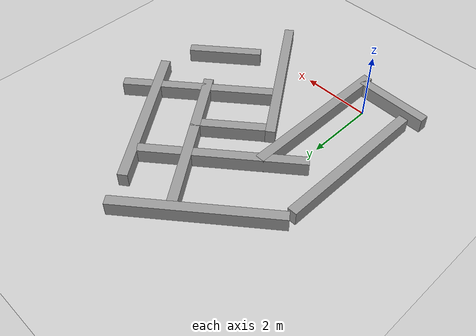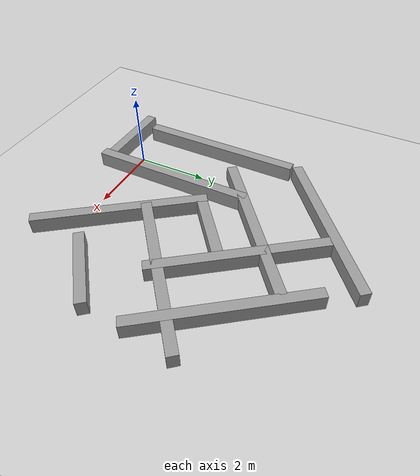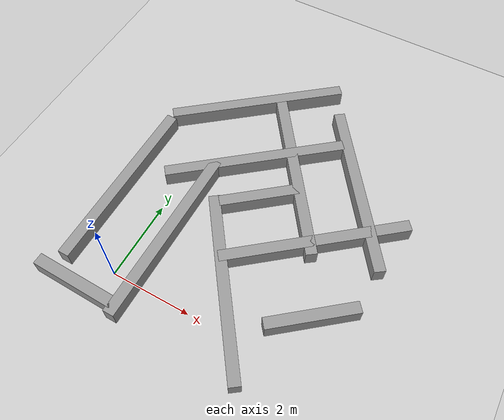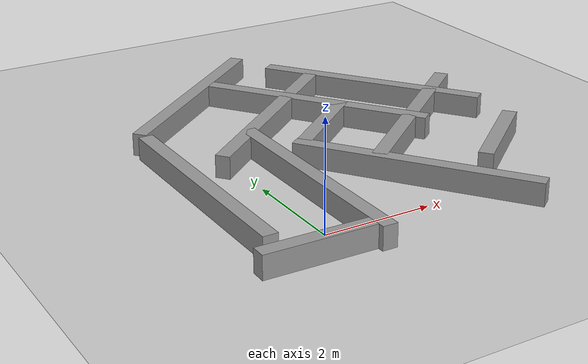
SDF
<sdf version="1.7">
 <world name="default">
  <plugin name="gazebo_ros_state" filename="libgazebo_ros_state.so"/>
  <light name="sun" type="directional">
   <pose>0 0 10 0 -0 0</pose>
   <diffuse>0.8 0.8 0.8 1</diffuse>
   <specular>0.2 0.2 0.2 1</specular>
   <attenuation>
    <range>1000</range>
    <constant>0.9</constant>
    <linear>0.01</linear>
    <quadratic>0.001</quadratic>
   </attenuation>
   <direction>-0.5 0.1 -0.9</direction>
   <spot><inner_angle>0</inner_angle><outer_angle>0</outer_angle><falloff>0</falloff></spot>
  </light>
  <model name="ground_plane">
   <static>1</static>
   <link name="link">
    <collision name="collision">
     <geometry><plane><normal>0 0 1</normal><size>100 100</size></plane></geometry>
     <surface>
      <contact><collide_bitmask>65535</collide_bitmask></contact>
      <friction><ode><mu>100</mu><mu2>50</mu2></ode></friction>
     </surface>
    </collision>
    <visual name="visual">
     <cast_shadows>0</cast_shadows>
     <geometry><plane><normal>0 0 1</normal><size>100 100</size></plane></geometry>
     <material>
      <script><uri>file://media/materials/scripts/gazebo.material</uri><name>Gazebo/Grey</name></script>
     </material>
    </visual>
   </link>
  </model>
  <gravity>0 0 -9.8</gravity>
  <magnetic_field>6e-06 2.3e-05 -4.2e-05</magnetic_field>
  <atmosphere type="adiabatic"/>
  <physics type="ode">
   <max_step_size>0.001</max_step_size>
   <real_time_factor>1</real_time_factor>
   <real_time_update_rate>1000</real_time_update_rate>
  </physics>
  <scene><ambient>0.4 0.4 0.4 1</ambient><background>0.7 0.7 0.7 1</background><shadows>1</shadows></scene>
  <audio><device>default</device></audio>
  <spherical_coordinates>
   <surface_model>EARTH_WGS84</surface_model>
   <latitude_deg>0</latitude_deg>
   <longitude_deg>0</longitude_deg>
   <elevation>0</elevation>
   <heading_deg>0</heading_deg>
  </spherical_coordinates>
  <model name="Untitled">
   <link name="link_0">
    <inertial>
     <mass>0.530694</mass>
     <inertia>
      <ixx>0.915718</ixx>
      <ixy>0</ixy>
      <ixz>0</ixz>
      <iyy>0.0113237</iyy>
      <iyz>0</iyz>
      <izz>0.911148</izz>
     </inertia>
    </inertial>
    <pose>3e-06 -3e-06 -0 0 -0 0</pose>
    <visual name="visual">
     <geometry><box><size>0.276337 4.53061 0.423897</size></box></geometry>
     <material>
      <lighting>1</lighting>
      <script><uri>file://media/materials/scripts/gazebo.material</uri><name>Gazebo/Grey</name></script>
      <shader type="pixel"/>
     </material>
    </visual>
    <collision name="collision">
     <geometry><box><size>0.276337 4.53061 0.423897</size></box></geometry>
     <surface>
      <friction>
       <ode><mu>1</mu><mu2>1</mu2><fdir1>0 0 0</fdir1><slip1>0</slip1><slip2>0</slip2></ode>
       <torsional>
        <coefficient>1</coefficient>
        <patch_radius>0</patch_radius>
        <surface_radius>0</surface_radius>
        <use_patch_radius>1</use_patch_radius>
        <ode><slip>0</slip></ode>
       </torsional>
      </friction>
      <bounce><restitution_coefficient>0</restitution_coefficient><threshold>1e+06</threshold></bounce>
      <contact>
       <collide_without_contact>0</collide_without_contact>
       <collide_without_contact_bitmask>1</collide_without_contact_bitmask>
       <collide_bitmask>1</collide_bitmask>
       <ode>
        <soft_cfm>0</soft_cfm>
        <soft_erp>0.2</soft_erp>
        <kp>1e+13</kp>
        <kd>1</kd>
        <max_vel>0.01</max_vel>
        <min_depth>0</min_depth>
       </ode>
       <bullet>
        <split_impulse>1</split_impulse>
        <split_impulse_penetration_threshold>-0.01</split_impulse_penetration_threshold>
        <soft_cfm>0</soft_cfm>
        <soft_erp>0.2</soft_erp>
        <kp>1e+13</kp>
        <kd>1</kd>
       </bullet>
      </contact>
     </surface>
    </collision>
   </link>
   <static>1</static>
   <pose>-1.13066 1.9927 0.216643 0 -0 0</pose>
  </model>
  <model name="Untitled_clone">
   <link name="link_0">
    <inertial>
     <mass>0.530694</mass>
     <inertia>
      <ixx>0.915718</ixx>
      <ixy>0</ixy>
      <ixz>0</ixz>
      <iyy>0.0113237</iyy>
      <iyz>0</iyz>
      <izz>0.911148</izz>
     </inertia>
    </inertial>
    <pose>3e-06 -3e-06 -0 0 -0 0</pose>
    <visual name="visual">
     <geometry><box><size>0.276337 4.53061 0.423897</size></box></geometry>
     <material>
      <lighting>1</lighting>
      <script><uri>file://media/materials/scripts/gazebo.material</uri><name>Gazebo/Grey</name></script>
      <shader type="pixel"/>
     </material>
    </visual>
    <collision name="collision">
     <geometry><box><size>0.276337 4.53061 0.423897</size></box></geometry>
     <surface>
      <friction>
       <ode><mu>1</mu><mu2>1</mu2><fdir1>0 0 0</fdir1><slip1>0</slip1><slip2>0</slip2></ode>
       <torsional>
        <coefficient>1</coefficient>
        <patch_radius>0</patch_radius>
        <surface_radius>0</surface_radius>
        <use_patch_radius>1</use_patch_radius>
        <ode><slip>0</slip></ode>
       </torsional>
      </friction>
      <bounce><restitution_coefficient>0</restitution_coefficient><threshold>1e+06</threshold></bounce>
      <contact>
       <collide_without_contact>0</collide_without_contact>
       <collide_without_contact_bitmask>1</collide_without_contact_bitmask>
       <collide_bitmask>1</collide_bitmask>
       <ode>
        <soft_cfm>0</soft_cfm>
        <soft_erp>0.2</soft_erp>
        <kp>1e+13</kp>
        <kd>1</kd>
        <max_vel>0.01</max_vel>
        <min_depth>0</min_depth>
       </ode>
       <bullet>
        <split_impulse>1</split_impulse>
        <split_impulse_penetration_threshold>-0.01</split_impulse_penetration_threshold>
        <soft_cfm>0</soft_cfm>
        <soft_erp>0.2</soft_erp>
        <kp>1e+13</kp>
        <kd>1</kd>
       </bullet>
      </contact>
     </surface>
    </collision>
   </link>
   <static>1</static>
   <pose>0.601 1.33459 0.216643 0 -0 0</pose>
  </model>
  <model name="Untitled_clone_clone">
   <link name="link_0">
    <inertial>
     <mass>0.530694</mass>
     <inertia>
      <ixx>0.915718</ixx>
      <ixy>0</ixy>
      <ixz>0</ixz>
      <iyy>0.0113237</iyy>
      <iyz>0</iyz>
      <izz>0.911148</izz>
     </inertia>
    </inertial>
    <pose>3e-06 -3e-06 -0 0 -0 0</pose>
    <visual name="visual">
     <geometry><box><size>0.276337 4.53061 0.423897</size></box></geometry>
     <material>
      <lighting>1</lighting>
      <script><uri>file://media/materials/scripts/gazebo.material</uri><name>Gazebo/Grey</name></script>
      <shader type="pixel"/>
     </material>
    </visual>
    <collision name="collision">
     <geometry><box><size>0.276337 4.53061 0.423897</size></box></geometry>
     <surface>
      <friction>
       <ode><mu>1</mu><mu2>1</mu2><fdir1>0 0 0</fdir1><slip1>0</slip1><slip2>0</slip2></ode>
       <torsional>
        <coefficient>1</coefficient>
        <patch_radius>0</patch_radius>
        <surface_radius>0</surface_radius>
        <use_patch_radius>1</use_patch_radius>
        <ode><slip>0</slip></ode>
       </torsional>
      </friction>
      <bounce><restitution_coefficient>0</restitution_coefficient><threshold>1e+06</threshold></bounce>
      <contact>
       <collide_without_contact>0</collide_without_contact>
       <collide_without_contact_bitmask>1</collide_without_contact_bitmask>
       <collide_bitmask>1</collide_bitmask>
       <ode>
        <soft_cfm>0</soft_cfm>
        <soft_erp>0.2</soft_erp>
        <kp>1e+13</kp>
        <kd>1</kd>
        <max_vel>0.01</max_vel>
        <min_depth>0</min_depth>
       </ode>
       <bullet>
        <split_impulse>1</split_impulse>
        <split_impulse_penetration_threshold>-0.01</split_impulse_penetration_threshold>
        <soft_cfm>0</soft_cfm>
        <soft_erp>0.2</soft_erp>
        <kp>1e+13</kp>
        <kd>1</kd>
       </bullet>
      </contact>
     </surface>
    </collision>
   </link>
   <static>1</static>
   <pose>0.569751 5.82121 0.216643 0 0 -0.889024</pose>
  </model>
  <model name="Untitled_clone_clone_clone">
   <link name="link_0">
    <inertial>
     <mass>0.530694</mass>
     <inertia>
      <ixx>0.915718</ixx>
      <ixy>0</ixy>
      <ixz>0</ixz>
      <iyy>0.0113237</iyy>
      <iyz>0</iyz>
      <izz>0.911148</izz>
     </inertia>
    </inertial>
    <pose>3e-06 -3e-06 -0 0 -0 0</pose>
    <visual name="visual">
     <geometry><box><size>0.276337 4.53059 0.423897</size></box></geometry>
     <material>
      <lighting>1</lighting>
      <script><uri>file://media/materials/scripts/gazebo.material</uri><name>Gazebo/Grey</name></script>
      <shader type="pixel"/>
     </material>
    </visual>
    <collision name="collision">
     <geometry><box><size>0.276337 4.53059 0.423897</size></box></geometry>
     <surface>
      <friction>
       <ode><mu>1</mu><mu2>1</mu2><fdir1>0 0 0</fdir1><slip1>0</slip1><slip2>0</slip2></ode>
       <torsional>
        <coefficient>1</coefficient>
        <patch_radius>0</patch_radius>
        <surface_radius>0</surface_radius>
        <use_patch_radius>1</use_patch_radius>
        <ode><slip>0</slip></ode>
       </torsional>
      </friction>
      <bounce><restitution_coefficient>0</restitution_coefficient><threshold>1e+06</threshold></bounce>
      <contact>
       <collide_without_contact>0</collide_without_contact>
       <collide_without_contact_bitmask>1</collide_without_contact_bitmask>
       <collide_bitmask>1</collide_bitmask>
       <ode>
        <soft_cfm>0</soft_cfm>
        <soft_erp>0.2</soft_erp>
        <kp>1e+13</kp>
        <kd>1</kd>
        <max_vel>0.01</max_vel>
        <min_depth>0</min_depth>
       </ode>
       <bullet>
        <split_impulse>1</split_impulse>
        <split_impulse_penetration_threshold>-0.01</split_impulse_penetration_threshold>
        <soft_cfm>0</soft_cfm>
        <soft_erp>0.2</soft_erp>
        <kp>1e+13</kp>
        <kd>1</kd>
       </bullet>
      </contact>
     </surface>
    </collision>
   </link>
   <static>1</static>
   <pose>1.39065 4.17171 0.216643 0 0 -0.889024</pose>
  </model>
  <model name="Untitled_clone_clone_clone_0">
   <link name="link_0">
    <inertial>
     <mass>0.530694</mass>
     <inertia>
      <ixx>0.915718</ixx>
      <ixy>0</ixy>
      <ixz>0</ixz>
      <iyy>0.0113237</iyy>
      <iyz>0</iyz>
      <izz>0.911148</izz>
     </inertia>
    </inertial>
    <pose>3e-06 -3e-06 -0 0 -0 0</pose>
    <visual name="visual">
     <geometry><box><size>0.276337 4.53061 0.423897</size></box></geometry>
     <material>
      <lighting>1</lighting>
      <script><uri>file://media/materials/scripts/gazebo.material</uri><name>Gazebo/Grey</name></script>
      <shader type="pixel"/>
     </material>
    </visual>
    <collision name="collision">
     <geometry><box><size>0.276337 4.53061 0.423897</size></box></geometry>
     <surface>
      <friction>
       <ode><mu>1</mu><mu2>1</mu2><fdir1>0 0 0</fdir1><slip1>0</slip1><slip2>0</slip2></ode>
       <torsional>
        <coefficient>1</coefficient>
        <patch_radius>0</patch_radius>
        <surface_radius>0</surface_radius>
        <use_patch_radius>1</use_patch_radius>
        <ode><slip>0</slip></ode>
       </torsional>
      </friction>
      <bounce><restitution_coefficient>0</restitution_coefficient><threshold>1e+06</threshold></bounce>
      <contact>
       <collide_without_contact>0</collide_without_contact>
       <collide_without_contact_bitmask>1</collide_without_contact_bitmask>
       <collide_bitmask>1</collide_bitmask>
       <ode>
        <soft_cfm>0</soft_cfm>
        <soft_erp>0.2</soft_erp>
        <kp>1e+13</kp>
        <kd>1</kd>
        <max_vel>0.01</max_vel>
        <min_depth>0</min_depth>
       </ode>
       <bullet>
        <split_impulse>1</split_impulse>
        <split_impulse_penetration_threshold>-0.01</split_impulse_penetration_threshold>
        <soft_cfm>0</soft_cfm>
        <soft_erp>0.2</soft_erp>
        <kp>1e+13</kp>
        <kd>1</kd>
       </bullet>
      </contact>
     </surface>
    </collision>
   </link>
   <static>1</static>
   <pose>3.98021 4.63256 0.216643 0 0 -2.51249</pose>
  </model>
  <model name="Untitled_clone_clone_clone_0_clone">
   <link name="link_0">
    <inertial>
     <mass>0.530694</mass>
     <inertia>
      <ixx>0.915718</ixx>
      <ixy>0</ixy>
      <ixz>0</ixz>
      <iyy>0.0113237</iyy>
      <iyz>0</iyz>
      <izz>0.911148</izz>
     </inertia>
    </inertial>
    <pose>3e-06 -3e-06 -0 0 -0 0</pose>
    <visual name="visual">
     <geometry><box><size>0.276337 4.5306 0.423897</size></box></geometry>
     <material>
      <lighting>1</lighting>
      <script><uri>file://media/materials/scripts/gazebo.material</uri><name>Gazebo/Grey</name></script>
      <shader type="pixel"/>
     </material>
    </visual>
    <collision name="collision">
     <geometry><box><size>0.276337 4.5306 0.423897</size></box></geometry>
     <surface>
      <friction>
       <ode><mu>1</mu><mu2>1</mu2><fdir1>0 0 0</fdir1><slip1>0</slip1><slip2>0</slip2></ode>
       <torsional>
        <coefficient>1</coefficient>
        <patch_radius>0</patch_radius>
        <surface_radius>0</surface_radius>
        <use_patch_radius>1</use_patch_radius>
        <ode><slip>0</slip></ode>
       </torsional>
      </friction>
      <bounce><restitution_coefficient>0</restitution_coefficient><threshold>1e+06</threshold></bounce>
      <contact>
       <collide_without_contact>0</collide_without_contact>
       <collide_without_contact_bitmask>1</collide_without_contact_bitmask>
       <collide_bitmask>1</collide_bitmask>
       <ode>
        <soft_cfm>0</soft_cfm>
        <soft_erp>0.2</soft_erp>
        <kp>1e+13</kp>
        <kd>1</kd>
        <max_vel>0.01</max_vel>
        <min_depth>0</min_depth>
       </ode>
       <bullet>
        <split_impulse>1</split_impulse>
        <split_impulse_penetration_threshold>-0.01</split_impulse_penetration_threshold>
        <soft_cfm>0</soft_cfm>
        <soft_erp>0.2</soft_erp>
        <kp>1e+13</kp>
        <kd>1</kd>
       </bullet>
      </contact>
     </surface>
    </collision>
   </link>
   <static>1</static>
   <pose>2.46398 4.2783 0.216643 0 0 -2.51249</pose>
  </model>
  <model name="Untitled_clone_clone_clone_1">
   <link name="link_0">
    <inertial>
     <mass>0.530694</mass>
     <inertia>
      <ixx>0.915718</ixx>
      <ixy>0</ixy>
      <ixz>0</ixz>
      <iyy>0.0113237</iyy>
      <iyz>0</iyz>
      <izz>0.911148</izz>
     </inertia>
    </inertial>
    <pose>3e-06 -3e-06 -0 0 -0 0</pose>
    <visual name="visual">
     <geometry><box><size>0.276337 4.53062 0.423897</size></box></geometry>
     <material>
      <lighting>1</lighting>
      <script><uri>file://media/materials/scripts/gazebo.material</uri><name>Gazebo/Grey</name></script>
      <shader type="pixel"/>
     </material>
    </visual>
    <collision name="collision">
     <geometry><box><size>0.276337 4.53062 0.423897</size></box></geometry>
     <surface>
      <friction>
       <ode><mu>1</mu><mu2>1</mu2><fdir1>0 0 0</fdir1><slip1>0</slip1><slip2>0</slip2></ode>
       <torsional>
        <coefficient>1</coefficient>
        <patch_radius>0</patch_radius>
        <surface_radius>0</surface_radius>
        <use_patch_radius>1</use_patch_radius>
        <ode><slip>0</slip></ode>
       </torsional>
      </friction>
      <bounce><restitution_coefficient>0</restitution_coefficient><threshold>1e+06</threshold></bounce>
      <contact>
       <collide_without_contact>0</collide_without_contact>
       <collide_without_contact_bitmask>1</collide_without_contact_bitmask>
       <collide_bitmask>1</collide_bitmask>
       <ode>
        <soft_cfm>0</soft_cfm>
        <soft_erp>0.2</soft_erp>
        <kp>1e+13</kp>
        <kd>1</kd>
        <max_vel>0.01</max_vel>
        <min_depth>0</min_depth>
       </ode>
       <bullet>
        <split_impulse>1</split_impulse>
        <split_impulse_penetration_threshold>-0.01</split_impulse_penetration_threshold>
        <soft_cfm>0</soft_cfm>
        <soft_erp>0.2</soft_erp>
        <kp>1e+13</kp>
        <kd>1</kd>
       </bullet>
      </contact>
     </surface>
    </collision>
   </link>
   <static>1</static>
   <pose>3.71996 2.8134 0.216643 0 0 -0.889024</pose>
  </model>
  <model name="Untitled_clone_clone_clone_1_clone">
   <link name="link_0">
    <inertial>
     <mass>0.530694</mass>
     <inertia>
      <ixx>0.915718</ixx>
      <ixy>0</ixy>
      <ixz>0</ixz>
      <iyy>0.0113237</iyy>
      <iyz>0</iyz>
      <izz>0.911148</izz>
     </inertia>
    </inertial>
    <pose>3e-06 -3e-06 -0 0 -0 0</pose>
    <visual name="visual">
     <geometry><box><size>0.276337 2.07513 0.423897</size></box></geometry>
     <material>
      <lighting>1</lighting>
      <script><uri>file://media/materials/scripts/gazebo.material</uri><name>Gazebo/Grey</name></script>
      <shader type="pixel"/>
     </material>
    </visual>
    <collision name="collision">
     <geometry><box><size>0.276337 2.07513 0.423897</size></box></geometry>
     <surface>
      <friction>
       <ode><mu>1</mu><mu2>1</mu2><fdir1>0 0 0</fdir1><slip1>0</slip1><slip2>0</slip2></ode>
       <torsional>
        <coefficient>1</coefficient>
        <patch_radius>0</patch_radius>
        <surface_radius>0</surface_radius>
        <use_patch_radius>1</use_patch_radius>
        <ode><slip>0</slip></ode>
       </torsional>
      </friction>
      <bounce><restitution_coefficient>0</restitution_coefficient><threshold>1e+06</threshold></bounce>
      <contact>
       <collide_without_contact>0</collide_without_contact>
       <collide_without_contact_bitmask>1</collide_without_contact_bitmask>
       <collide_bitmask>1</collide_bitmask>
       <ode>
        <soft_cfm>0</soft_cfm>
        <soft_erp>0.2</soft_erp>
        <kp>1e+13</kp>
        <kd>1</kd>
        <max_vel>0.01</max_vel>
        <min_depth>0</min_depth>
       </ode>
       <bullet>
        <split_impulse>1</split_impulse>
        <split_impulse_penetration_threshold>-0.01</split_impulse_penetration_threshold>
        <soft_cfm>0</soft_cfm>
        <soft_erp>0.2</soft_erp>
        <kp>1e+13</kp>
        <kd>1</kd>
       </bullet>
      </contact>
     </surface>
    </collision>
   </link>
   <static>1</static>
   <pose>2.04694 3.30541 0.216643 0 0 -0.889024</pose>
  </model>
  <model name="Untitled_clone_clone_clone_0_clone_0">
   <link name="link_0">
    <inertial>
     <mass>0.530694</mass>
     <inertia>
      <ixx>0.915718</ixx>
      <ixy>0</ixy>
      <ixz>0</ixz>
      <iyy>0.0113237</iyy>
      <iyz>0</iyz>
      <izz>0.911148</izz>
     </inertia>
    </inertial>
    <pose>3e-06 -3e-06 -0 0 -0 0</pose>
    <visual name="visual">
     <geometry><box><size>0.276337 4.53061 0.423897</size></box></geometry>
     <material>
      <lighting>1</lighting>
      <script><uri>file://media/materials/scripts/gazebo.material</uri><name>Gazebo/Grey</name></script>
      <shader type="pixel"/>
     </material>
    </visual>
    <collision name="collision">
     <geometry><box><size>0.276337 4.53061 0.423897</size></box></geometry>
     <surface>
      <friction>
       <ode><mu>1</mu><mu2>1</mu2><fdir1>0 0 0</fdir1><slip1>0</slip1><slip2>0</slip2></ode>
       <torsional>
        <coefficient>1</coefficient>
        <patch_radius>0</patch_radius>
        <surface_radius>0</surface_radius>
        <use_patch_radius>1</use_patch_radius>
        <ode><slip>0</slip></ode>
       </torsional>
      </friction>
      <bounce><restitution_coefficient>0</restitution_coefficient><threshold>1e+06</threshold></bounce>
      <contact>
       <collide_without_contact>0</collide_without_contact>
       <collide_without_contact_bitmask>1</collide_without_contact_bitmask>
       <collide_bitmask>1</collide_bitmask>
       <ode>
        <soft_cfm>0</soft_cfm>
        <soft_erp>0.2</soft_erp>
        <kp>1e+13</kp>
        <kd>1</kd>
        <max_vel>0.01</max_vel>
        <min_depth>0</min_depth>
       </ode>
       <bullet>
        <split_impulse>1</split_impulse>
        <split_impulse_penetration_threshold>-0.01</split_impulse_penetration_threshold>
        <soft_cfm>0</soft_cfm>
        <soft_erp>0.2</soft_erp>
        <kp>1e+13</kp>
        <kd>1</kd>
       </bullet>
      </contact>
     </surface>
    </collision>
   </link>
   <static>1</static>
   <pose>2.40348 0.879917 0.216643 0 0 -2.51249</pose>
  </model>
  <model name="Untitled_clone_clone_clone_clone">
   <link name="link_0">
    <inertial>
     <mass>0.530694</mass>
     <inertia>
      <ixx>0.915718</ixx>
      <ixy>0</ixy>
      <ixz>0</ixz>
      <iyy>0.0113237</iyy>
      <iyz>0</iyz>
      <izz>0.911148</izz>
     </inertia>
    </inertial>
    <pose>3e-06 -3e-06 -0 0 -0 0</pose>
    <visual name="visual">
     <geometry><box><size>0.276337 2.1496 0.423897</size></box></geometry>
     <material>
      <lighting>1</lighting>
      <script><uri>file://media/materials/scripts/gazebo.material</uri><name>Gazebo/Grey</name></script>
      <shader type="pixel"/>
     </material>
    </visual>
    <collision name="collision">
     <geometry><box><size>0.276337 2.1496 0.423897</size></box></geometry>
     <surface>
      <friction>
       <ode><mu>1</mu><mu2>1</mu2><fdir1>0 0 0</fdir1><slip1>0</slip1><slip2>0</slip2></ode>
       <torsional>
        <coefficient>1</coefficient>
        <patch_radius>0</patch_radius>
        <surface_radius>0</surface_radius>
        <use_patch_radius>1</use_patch_radius>
        <ode><slip>0</slip></ode>
       </torsional>
      </friction>
      <bounce><restitution_coefficient>0</restitution_coefficient><threshold>1e+06</threshold></bounce>
      <contact>
       <collide_without_contact>0</collide_without_contact>
       <collide_without_contact_bitmask>1</collide_without_contact_bitmask>
       <collide_bitmask>1</collide_bitmask>
       <ode>
        <soft_cfm>0</soft_cfm>
        <soft_erp>0.2</soft_erp>
        <kp>1e+13</kp>
        <kd>1</kd>
        <max_vel>0.01</max_vel>
        <min_depth>0</min_depth>
       </ode>
       <bullet>
        <split_impulse>1</split_impulse>
        <split_impulse_penetration_threshold>-0.01</split_impulse_penetration_threshold>
        <soft_cfm>0</soft_cfm>
        <soft_erp>0.2</soft_erp>
        <kp>1e+13</kp>
        <kd>1</kd>
       </bullet>
      </contact>
     </surface>
    </collision>
   </link>
   <static>1</static>
   <pose>4.43801 1.16258 0.216643 0 0 -0.889024</pose>
  </model>
  <model name="Untitled_clone_clone_clone_clone_0">
   <link name="link_0">
    <inertial>
     <mass>0.530694</mass>
     <inertia>
      <ixx>0.915718</ixx>
      <ixy>0</ixy>
      <ixz>0</ixz>
      <iyy>0.0113237</iyy>
      <iyz>0</iyz>
      <izz>0.911148</izz>
     </inertia>
    </inertial>
    <pose>3e-06 -3e-06 -0 0 -0 0</pose>
    <visual name="visual">
     <geometry><box><size>0.276337 2.1496 0.423897</size></box></geometry>
     <material>
      <lighting>1</lighting>
      <script><uri>file://media/materials/scripts/gazebo.material</uri><name>Gazebo/Grey</name></script>
      <shader type="pixel"/>
     </material>
    </visual>
    <collision name="collision">
     <geometry><box><size>0.276337 2.1496 0.423897</size></box></geometry>
     <surface>
      <friction>
       <ode><mu>1</mu><mu2>1</mu2><fdir1>0 0 0</fdir1><slip1>0</slip1><slip2>0</slip2></ode>
       <torsional>
        <coefficient>1</coefficient>
        <patch_radius>0</patch_radius>
        <surface_radius>0</surface_radius>
        <use_patch_radius>1</use_patch_radius>
        <ode><slip>0</slip></ode>
       </torsional>
      </friction>
      <bounce><restitution_coefficient>0</restitution_coefficient><threshold>1e+06</threshold></bounce>
      <contact>
       <collide_without_contact>0</collide_without_contact>
       <collide_without_contact_bitmask>1</collide_without_contact_bitmask>
       <collide_bitmask>1</collide_bitmask>
       <ode>
        <soft_cfm>0</soft_cfm>
        <soft_erp>0.2</soft_erp>
        <kp>1e+13</kp>
        <kd>1</kd>
        <max_vel>0.01</max_vel>
        <min_depth>0</min_depth>
       </ode>
       <bullet>
        <split_impulse>1</split_impulse>
        <split_impulse_penetration_threshold>-0.01</split_impulse_penetration_threshold>
        <soft_cfm>0</soft_cfm>
        <soft_erp>0.2</soft_erp>
        <kp>1e+13</kp>
        <kd>1</kd>
       </bullet>
      </contact>
     </surface>
    </collision>
   </link>
   <static>1</static>
   <pose>-0.485191 -0.661862 0.216643 0 0 -1.59056</pose>
  </model>
 </world>
</sdf>
